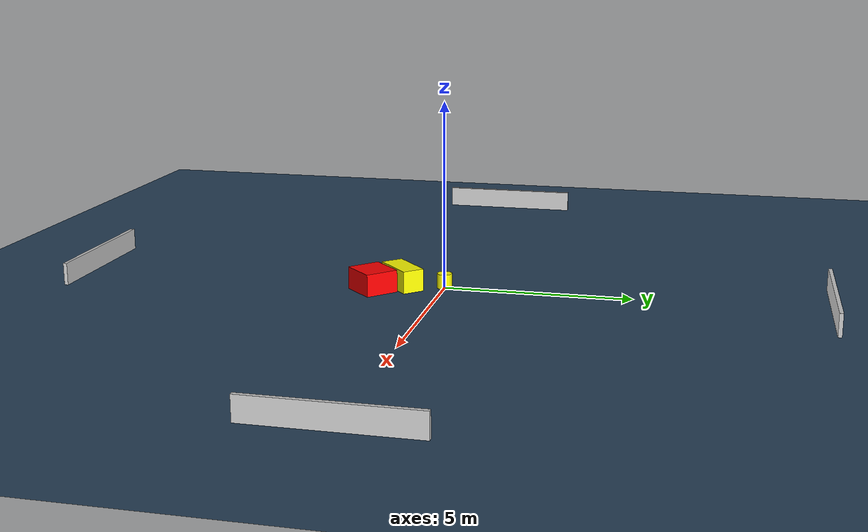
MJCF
<?xml version="1.0" ?>
<mujoco model="generated_environment">
  <option timestep="0.01" integrator="RK4" cone="elliptic"/>
  <default>
    <geom density="1"/>
  </default>
  <asset>
    <texture builtin="gradient" height="3072" name="skybox" rgb1="0.3 0.5 0.7" rgb2="0 0 0" type="skybox" width="512"/>
    <texture builtin="checker" height="300" name="groundplane" rgb1="0.2 0.3 0.4" rgb2="0.1 0.2 0.3" type="2d" width="300"/>
    <material name="groundplane" reflectance="0.2" texrepeat="5 5" texture="groundplane"/>
  </asset>
  <worldbody>
    <light dir="0 0 -1" directional="true" pos="0 0 1.5"/>
    <geom condim="3" friction="0.5 0.005 0.001" material="groundplane" name="floor" pos="0 0 0" size="0 0 0.05" type="plane"/>
    <body name="walls">
      <geom name="wall_1" condim="4" pos="-10.0 0.0 0.3" rgba="0.800000011920929 0.800000011920929 0.800000011920929 1.0" size="0.05 2.0 0.3" type="box"/>
      <geom name="wall_2" condim="4" pos="10.0 0.0 0.3" rgba="0.800000011920929 0.800000011920929 0.800000011920929 1.0" size="0.05 2.0 0.3" type="box"/>
      <geom name="wall_3" condim="4" pos="0.0 -10.0 0.3" rgba="0.800000011920929 0.800000011920929 0.800000011920929 1.0" size="2.0 0.05 0.3" type="box"/>
      <geom name="wall_4" condim="4" pos="0.0 10.0 0.3" rgba="0.800000011920929 0.800000011920929 0.800000011920929 1.0" size="2.0 0.05 0.3" type="box"/>
    </body>
    <body name="robot">
      <joint name="joint_x" type="slide" pos="0 0 0" axis="1 0 0"/>
      <joint name="joint_y" type="slide" pos="0 0 0" axis="0 1 0"/>
      <geom name="robot" type="cylinder" pos="0.0 0.0 0.2" size="0.2 0.2 0.0" mass="5.0" friction="1.0 0.005 0.0001" condim="4" rgba="1.0 1.0 0.0 1.0"/>
    </body>
    <body name="obstacle_1_movable">
      <geom name="obstacle_1_movable" condim="4" pos="0.17580474079463193 -1.1108641241275283 0.3" euler="0 0 133.12619294285275" friction="0.0 0.005 0.001" rgba="1.0 1.0 0.0 1.0" size="0.299793145131278 0.6043866470686718 0.3" type="box" mass="0.1"/>
      <joint type="free"/>
    </body>
    <body name="obstacle_2_static">
      <geom name="obstacle_2_static" condim="4" pos="0.6521606063800488 -1.806908967120487 0.3" euler="0 0 45.938948223045834" friction="0.0 0.005 0.001" rgba="1.0 0.0 0.0 1.0" size="0.49884528773322134 0.45425952464861075 0.3" type="box"/>
    </body>
  </worldbody>
  <actuator>
    <motor name="actuator_x" joint="joint_x" gear="1" ctrlrange="-1 1"/>
    <motor name="actuator_y" joint="joint_y" gear="1" ctrlrange="-1 1"/>
  </actuator>
</mujoco>
